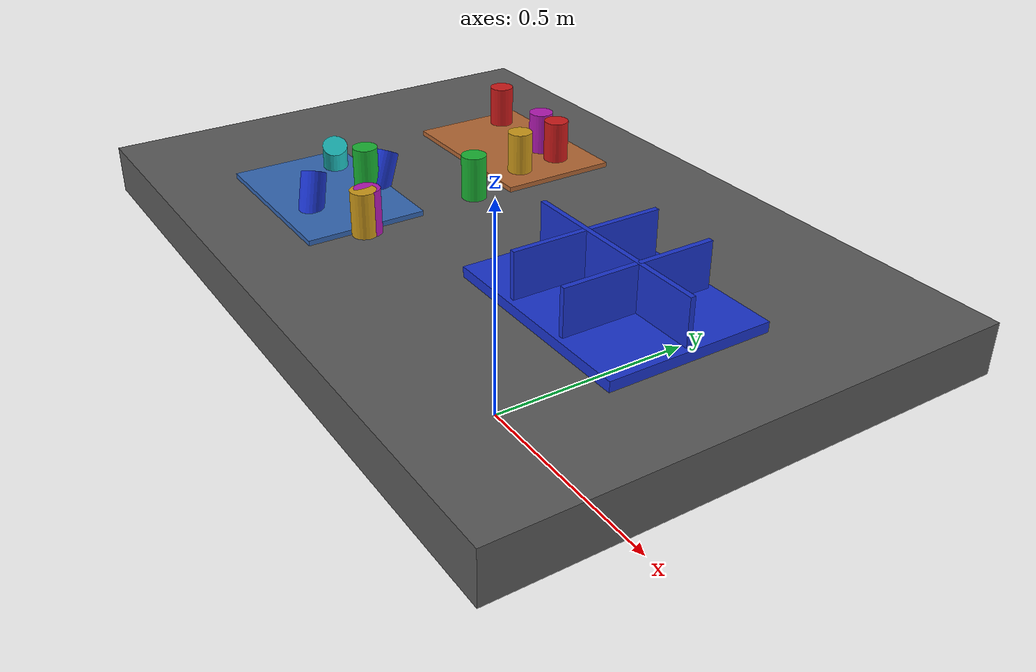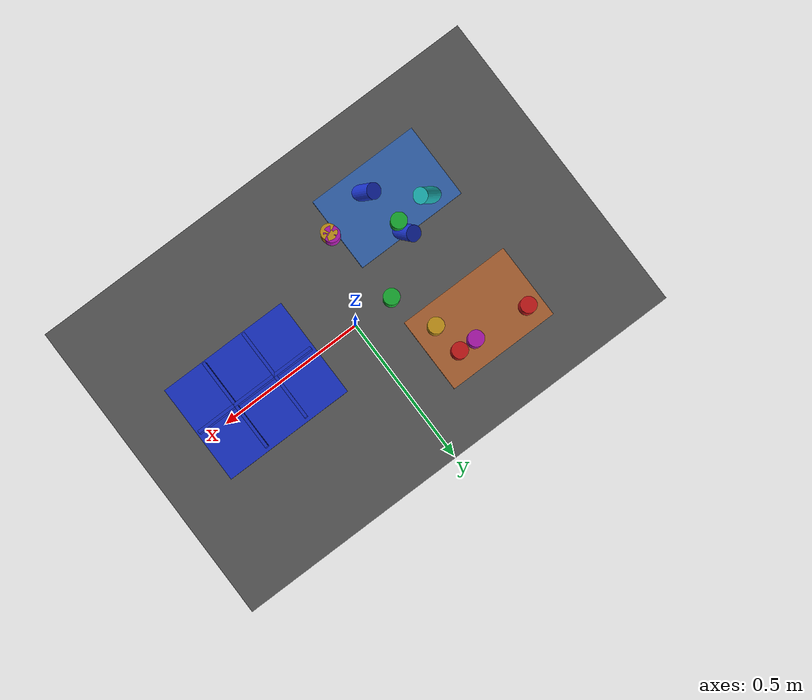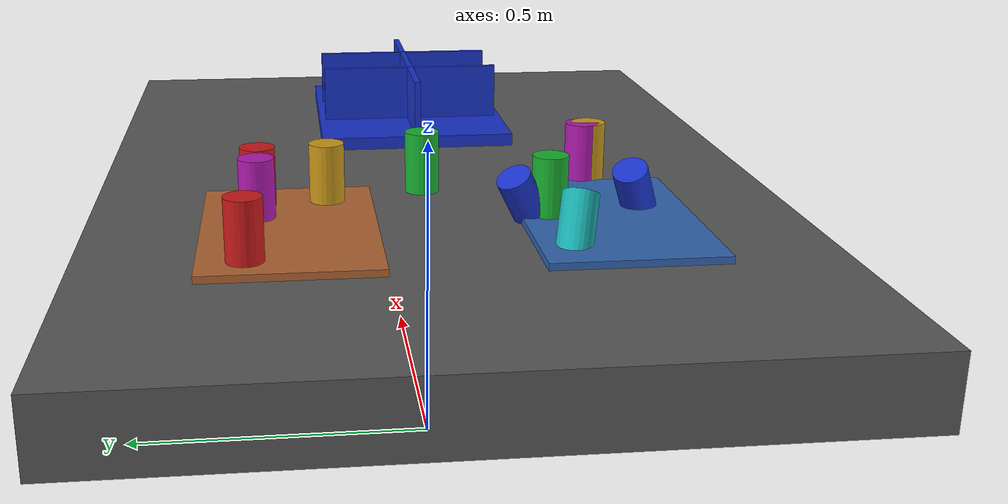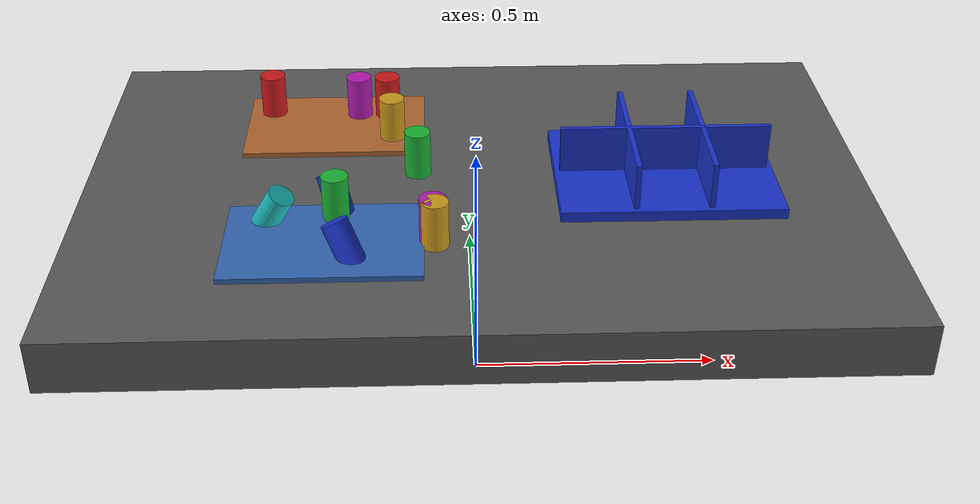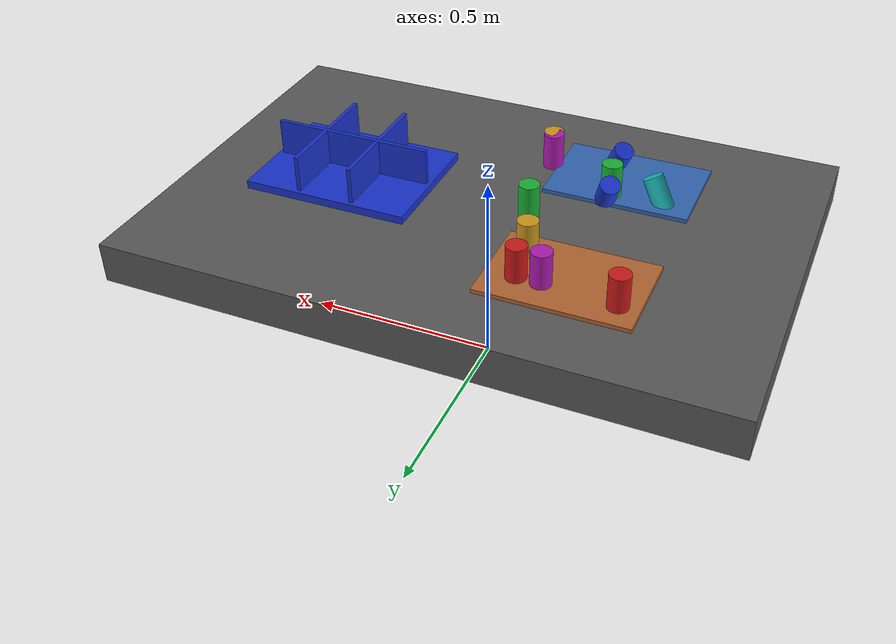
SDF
<?xml version="1.0" ?>
<sdf version="1.9">
  <!-- Standalone M1B scene.  The controller-backed Panda is spawned by the
       existing launch path; this file never alters the frozen M1A cube world. -->
  <world name="industrial_cylinder_v1">
    <physics name="bullet" type="bullet"><max_step_size>0.001</max_step_size><real_time_factor>1.0</real_time_factor></physics>
    <plugin name="gz::sim::systems::Physics" filename="gz-sim-physics-system"><engine><filename>gz-physics-bullet-featherstone-plugin</filename></engine></plugin>
    <plugin name="gz::sim::systems::UserCommands" filename="gz-sim-user-commands-system"/>
    <plugin name="gz::sim::systems::SceneBroadcaster" filename="gz-sim-scene-broadcaster-system"/>
    <plugin name="gz::sim::systems::Sensors" filename="gz-sim-sensors-system"><render_engine>ogre2</render_engine></plugin>
    <gravity>0 0 -9.81</gravity>
    <light type="directional" name="industrial_light"><pose>0 0 5 0 0 0</pose><direction>-0.3 0.2 -0.9</direction><diffuse>0.9 0.9 0.9 1</diffuse></light>
    <model name="industrial_work_table"><static>true</static><link name="link"><pose>0 0 0.4 0 0 0</pose><collision name="collision"><geometry><box><size>1.5 1.0 0.1</size></box></geometry></collision><visual name="visual"><geometry><box><size>1.5 1.0 0.1</size></box></geometry><material><diffuse>0.35 0.35 0.35 1</diffuse></material></visual></link></model>
    <model name="camera_fixture"><static>true</static><link name="camera_rgbd"><pose>-0.80 -0.80 1.40 0 0.77 0.93</pose><sensor name="front_rgbd" type="rgbd_camera"><always_on>1</always_on><update_rate>15</update_rate><topic>/xh/camera/rgbd</topic><camera><horizontal_fov>1.047</horizontal_fov><image><width>640</width><height>480</height><format>R8G8B8</format></image><clip><near>0.1</near><far>4.0</far></clip></camera></sensor></link></model>
    <model name="incoming_zone_a"><static>true</static><link name="link"><pose>-0.28 -0.22 0.455 0 0 0</pose><visual name="visual"><geometry><box><size>0.36 0.24 0.01</size></box></geometry><material><diffuse>0.2 0.4 0.7 1</diffuse></material></visual></link></model>
    <model name="incoming_zone_b"><static>true</static><link name="link"><pose>-0.28 0.22 0.455 0 0 0</pose><visual name="visual"><geometry><box><size>0.36 0.24 0.01</size></box></geometry><material><diffuse>0.7 0.4 0.2 1</diffuse></material></visual></link></model>
    <!-- M1B_RANDOM_PARTS_BEGIN -->
    <model name="cylinder_01"><pose>-0.4105 0.2767 0.5000 0.0000 0.0000 -1.4647</pose><link name="link"><inertial><mass>0.06</mass></inertial><collision name="collision"><geometry><cylinder><radius>0.025</radius><length>0.09</length></cylinder></geometry></collision><visual name="visual"><geometry><cylinder><radius>0.025</radius><length>0.09</length></cylinder></geometry><material><diffuse>0.800 0.100 0.100 1</diffuse><specular>0.15 0.15 0.15 1</specular></material></visual></link></model>
    <model name="cylinder_02"><pose>-0.2612 -0.1401 0.5000 3.1416 0.0000 -2.6402</pose><link name="link"><inertial><mass>0.06</mass></inertial><collision name="collision"><geometry><cylinder><radius>0.025</radius><length>0.09</length></cylinder></geometry></collision><visual name="visual"><geometry><cylinder><radius>0.025</radius><length>0.09</length></cylinder></geometry><material><diffuse>0.100 0.700 0.200 1</diffuse><specular>0.15 0.15 0.15 1</specular></material></visual></link></model>
    <model name="cylinder_03"><pose>-0.2619 -0.1056 0.4800 0.4500 -0.3000 -2.0250</pose><link name="link"><inertial><mass>0.06</mass></inertial><collision name="collision"><geometry><cylinder><radius>0.025</radius><length>0.09</length></cylinder></geometry></collision><visual name="visual"><geometry><cylinder><radius>0.025</radius><length>0.09</length></cylinder></geometry><material><diffuse>0.100 0.200 0.800 1</diffuse><specular>0.15 0.15 0.15 1</specular></material></visual></link></model>
    <model name="cylinder_04"><pose>-0.1639 0.1643 0.5000 0.0000 0.0000 1.7705</pose><link name="link"><inertial><mass>0.06</mass></inertial><collision name="collision"><geometry><cylinder><radius>0.025</radius><length>0.09</length></cylinder></geometry></collision><visual name="visual"><geometry><cylinder><radius>0.025</radius><length>0.09</length></cylinder></geometry><material><diffuse>0.800 0.600 0.100 1</diffuse><specular>0.15 0.15 0.15 1</specular></material></visual></link></model>
    <model name="cylinder_05"><pose>-0.2326 0.2629 0.5000 3.1416 0.0000 -1.5831</pose><link name="link"><inertial><mass>0.06</mass></inertial><collision name="collision"><geometry><cylinder><radius>0.025</radius><length>0.09</length></cylinder></geometry></collision><visual name="visual"><geometry><cylinder><radius>0.025</radius><length>0.09</length></cylinder></geometry><material><diffuse>0.700 0.100 0.700 1</diffuse><specular>0.15 0.15 0.15 1</specular></material></visual></link></model>
    <model name="cylinder_06"><pose>-0.3769 -0.1532 0.4800 0.4500 -0.3000 1.7274</pose><link name="link"><inertial><mass>0.06</mass></inertial><collision name="collision"><geometry><cylinder><radius>0.025</radius><length>0.09</length></cylinder></geometry></collision><visual name="visual"><geometry><cylinder><radius>0.025</radius><length>0.09</length></cylinder></geometry><material><diffuse>0.100 0.700 0.700 1</diffuse><specular>0.15 0.15 0.15 1</specular></material></visual></link></model>
    <model name="cylinder_07"><pose>-0.1752 0.2620 0.5000 0.0000 0.0000 2.0264</pose><link name="link"><inertial><mass>0.06</mass></inertial><collision name="collision"><geometry><cylinder><radius>0.025</radius><length>0.09</length></cylinder></geometry></collision><visual name="visual"><geometry><cylinder><radius>0.025</radius><length>0.09</length></cylinder></geometry><material><diffuse>0.800 0.100 0.100 1</diffuse><specular>0.15 0.15 0.15 1</specular></material></visual></link></model>
    <model name="cylinder_08"><pose>-0.1121 0.0220 0.5000 3.1416 0.0000 -2.6464</pose><link name="link"><inertial><mass>0.06</mass></inertial><collision name="collision"><geometry><cylinder><radius>0.025</radius><length>0.09</length></cylinder></geometry></collision><visual name="visual"><geometry><cylinder><radius>0.025</radius><length>0.09</length></cylinder></geometry><material><diffuse>0.100 0.700 0.200 1</diffuse><specular>0.15 0.15 0.15 1</specular></material></visual></link></model>
    <model name="cylinder_09"><pose>-0.2389 -0.2682 0.4800 0.4500 -0.3000 -1.7023</pose><link name="link"><inertial><mass>0.06</mass></inertial><collision name="collision"><geometry><cylinder><radius>0.025</radius><length>0.09</length></cylinder></geometry></collision><visual name="visual"><geometry><cylinder><radius>0.025</radius><length>0.09</length></cylinder></geometry><material><diffuse>0.100 0.200 0.800 1</diffuse><specular>0.15 0.15 0.15 1</specular></material></visual></link></model>
    <model name="cylinder_10"><pose>-0.0807 -0.2344 0.5000 0.0000 0.0000 -2.6860</pose><link name="link"><inertial><mass>0.06</mass></inertial><collision name="collision"><geometry><cylinder><radius>0.025</radius><length>0.09</length></cylinder></geometry></collision><visual name="visual"><geometry><cylinder><radius>0.025</radius><length>0.09</length></cylinder></geometry><material><diffuse>0.800 0.600 0.100 1</diffuse><specular>0.15 0.15 0.15 1</specular></material></visual></link></model>
    <model name="cylinder_11"><pose>-0.0837 -0.2243 0.5000 3.1416 0.0000 1.3577</pose><link name="link"><inertial><mass>0.06</mass></inertial><collision name="collision"><geometry><cylinder><radius>0.025</radius><length>0.09</length></cylinder></geometry></collision><visual name="visual"><geometry><cylinder><radius>0.025</radius><length>0.09</length></cylinder></geometry><material><diffuse>0.700 0.100 0.700 1</diffuse><specular>0.15 0.15 0.15 1</specular></material></visual></link></model>
    <!-- M1B_RANDOM_PARTS_END -->
    <model name="blue_partition_bin"><static>true</static><pose>0.36 0 0.45 0 0 0</pose><link name="link"><collision name="floor"><pose>0 0 0.01 0 0 0</pose><geometry><box><size>0.42 0.32 0.02</size></box></geometry></collision><visual name="floor_visual"><pose>0 0 0.01 0 0 0</pose><geometry><box><size>0.42 0.32 0.02</size></box></geometry><material><diffuse>0.1 0.2 0.8 1</diffuse></material></visual><visual name="row_divider"><pose>0 0 0.06 0 0 0</pose><geometry><box><size>0.40 0.01 0.10</size></box></geometry><material><diffuse>0.1 0.2 0.8 1</diffuse></material></visual><visual name="col_divider_a"><pose>-0.07 0 0.06 0 0 0</pose><geometry><box><size>0.01 0.30 0.10</size></box></geometry><material><diffuse>0.1 0.2 0.8 1</diffuse></material></visual><visual name="col_divider_b"><pose>0.07 0 0.06 0 0 0</pose><geometry><box><size>0.01 0.30 0.10</size></box></geometry><material><diffuse>0.1 0.2 0.8 1</diffuse></material></visual></link></model>
    <!-- Reserved only: second table, bin transport corridor, stackable-bin
         collision volume, and second arm mounting namespace. -->
  </world>
</sdf>
